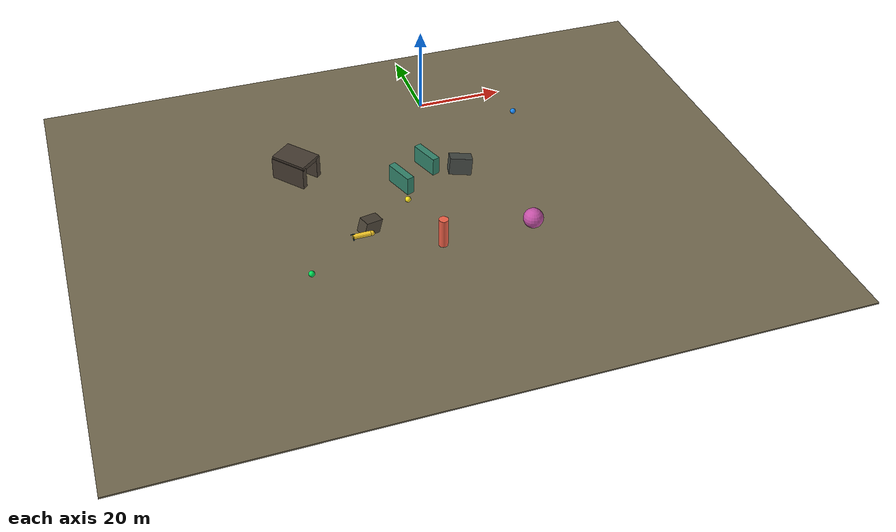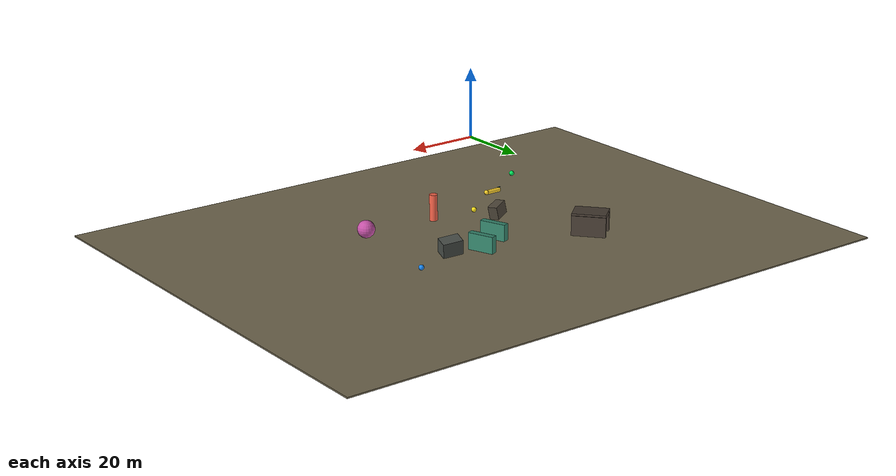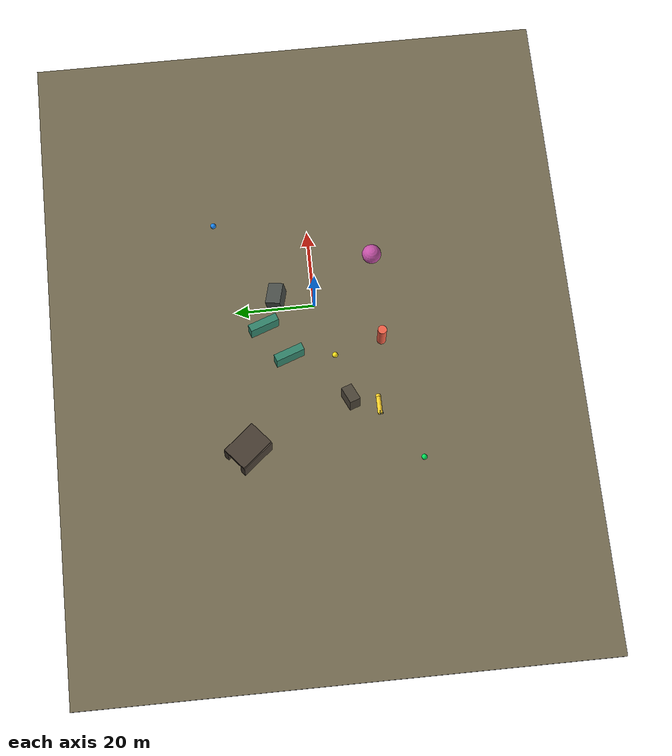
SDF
<?xml version="1.0"?>
<sdf version="1.10">
  <world name="coral_reef_world">
    <plugin filename="gz-sim-physics-system"
            name="gz::sim::systems::Physics"/>
    <plugin filename="gz-sim-user-commands-system"
            name="gz::sim::systems::UserCommands"/>
    <plugin filename="gz-sim-scene-broadcaster-system"
            name="gz::sim::systems::SceneBroadcaster"/>
    <plugin filename="gz-sim-sensors-system"
            name="gz::sim::systems::Sensors">
      <render_engine>ogre2</render_engine>
    </plugin>

    <plugin filename="libuuv_underwater_current_ros_plugin.so"
            name="uuv_simulator_ros::UnderwaterCurrentROSPlugin"/>
    <physics name="default_physics" default="true" type="ode">
      <max_step_size>0.002</max_step_size>
      <real_time_factor>1.0</real_time_factor>
      <real_time_update_rate>500</real_time_update_rate>
    </physics>

    <spherical_coordinates>
      <surface_model>EARTH_WGS84</surface_model>
      <latitude_deg>56.71897669633431</latitude_deg>
      <longitude_deg>3.515625</longitude_deg>
      <elevation>0</elevation>
      <heading_deg>0</heading_deg>
    </spherical_coordinates>

    <scene>
      <ambient>0.04 0.22 0.32 1</ambient>
      <background>0.01 0.05 0.08 1</background>
      <shadows>true</shadows>
      <fog>
        <type>linear</type>
        <color>0.02 0.20 0.28 1</color>
        <start>18</start>
        <end>95</end>
        <density>0.035</density>
      </fog>
    </scene>

    <light name="filtered_surface_light" type="directional">
      <pose>0 0 60 0.4 0.2 0</pose>
      <diffuse>0.35 0.62 0.72 1</diffuse>
      <specular>0.08 0.12 0.14 1</specular>
      <direction>-0.35 0.15 -1</direction>
      <cast_shadows>false</cast_shadows>
    </light>

    <model name="seabed">
      <static>true</static>
      <pose>0 0 -30 0 0 0</pose>
      <link name="seabed_link">
        <collision name="seabed_collision">
          <geometry>
            <box>
              <size>180 140 0.4</size>
            </box>
          </geometry>
        </collision>
        <visual name="seabed_visual">
          <geometry>
            <box>
              <size>180 140 0.4</size>
            </box>
          </geometry>
          <material>
            <ambient>0.34 0.30 0.23 1</ambient>
            <diffuse>0.46 0.42 0.32 1</diffuse>
            <specular>0.02 0.02 0.02 1</specular>
          </material>
        </visual>
      </link>
    </model>

    <model name="navigation_waypoints">
      <static>true</static>
      <pose>0 0 0 0 0 0</pose>
      <link name="waypoints_link">
        <visual name="wp_start">
          <pose>-35 -25 -24 0 0 0</pose>
          <geometry><sphere><radius>0.75</radius></sphere></geometry>
          <material><ambient>0 0.9 0.35 1</ambient><diffuse>0 0.9 0.35 1</diffuse></material>
        </visual>
        <visual name="wp_gap">
          <pose>-5 -5 -24 0 0 0</pose>
          <geometry><sphere><radius>0.75</radius></sphere></geometry>
          <material><ambient>1 0.9 0.1 1</ambient><diffuse>1 0.9 0.1 1</diffuse></material>
        </visual>
        <visual name="wp_goal">
          <pose>35 24 -24 0 0 0</pose>
          <geometry><sphere><radius>0.75</radius></sphere></geometry>
          <material><ambient>0.1 0.55 1 1</ambient><diffuse>0.1 0.55 1 1</diffuse></material>
        </visual>
      </link>
    </model>

    <model name="uuv_simulator_demo_body">
      <pose>-20 -15 -24 0 0 0</pose>
      <link name="base_link">
        <gravity>false</gravity>
        <inertial>
          <mass>120</mass>
          <inertia>
            <ixx>45</ixx>
            <iyy>125</iyy>
            <izz>125</izz>
            <ixy>0</ixy>
            <ixz>0</ixz>
            <iyz>0</iyz>
          </inertia>
        </inertial>
        <collision name="body_collision">
          <pose>0 0 0 0 1.57079632679 0</pose>
          <geometry>
            <cylinder>
              <radius>0.65</radius>
              <length>4.5</length>
            </cylinder>
          </geometry>
        </collision>
        <visual name="body_visual">
          <pose>0 0 0 0 1.57079632679 0</pose>
          <geometry>
            <cylinder>
              <radius>0.65</radius>
              <length>4.5</length>
            </cylinder>
          </geometry>
          <material>
            <ambient>0.95 0.72 0.08 1</ambient>
            <diffuse>1.0 0.82 0.16 1</diffuse>
            <specular>0.2 0.2 0.12 1</specular>
          </material>
        </visual>
        <visual name="nose_visual">
          <pose>2.55 0 0 0 0 0</pose>
          <geometry>
            <sphere>
              <radius>0.68</radius>
            </sphere>
          </geometry>
          <material>
            <ambient>0.95 0.72 0.08 1</ambient>
            <diffuse>1.0 0.82 0.16 1</diffuse>
          </material>
        </visual>
        <visual name="tail_fin_vertical">
          <pose>-2.2 -0.75 0 0 0 0</pose>
          <geometry>
            <box>
              <size>0.2 0.12 1.1</size>
            </box>
          </geometry>
          <material>
            <ambient>0.05 0.18 0.25 1</ambient>
            <diffuse>0.06 0.26 0.36 1</diffuse>
          </material>
        </visual>
        <visual name="tail_fin_horizontal">
          <pose>-2.2 0 0.75 0 0 0</pose>
          <geometry>
            <box>
              <size>1.1 0.12 0.2</size>
            </box>
          </geometry>
          <material>
            <ambient>0.05 0.18 0.25 1</ambient>
            <diffuse>0.06 0.26 0.36 1</diffuse>
          </material>
        </visual>
      </link>
      <plugin filename="gz-sim-velocity-control-system"
              name="gz::sim::systems::VelocityControl">
        <initial_linear>0.35 0 0</initial_linear>
        <initial_angular>0 0 0</initial_angular>
      </plugin>
    </model>

    <model name="reef_rocks_and_corals">
      <static>true</static>
      <pose>0 0 0 0 0 0</pose>
      <link name="reef_link">
        <collision name="rock_1_collision">
          <pose>-16 -8 -27.2 0.1 0.2 0.4</pose>
          <geometry><box><size>5 3 4</size></box></geometry>
        </collision>
        <visual name="rock_1_visual">
          <pose>-16 -8 -27.2 0.1 0.2 0.4</pose>
          <geometry><box><size>5 3 4</size></box></geometry>
          <material><ambient>0.20 0.18 0.16 1</ambient><diffuse>0.30 0.27 0.22 1</diffuse></material>
        </visual>

        <collision name="rock_2_collision">
          <pose>14 9 -27.0 -0.2 0.1 -0.25</pose>
          <geometry><box><size>6 4 4.5</size></box></geometry>
        </collision>
        <visual name="rock_2_visual">
          <pose>14 9 -27.0 -0.2 0.1 -0.25</pose>
          <geometry><box><size>6 4 4.5</size></box></geometry>
          <material><ambient>0.18 0.19 0.18 1</ambient><diffuse>0.28 0.30 0.28 1</diffuse></material>
        </visual>

        <collision name="coral_column_collision">
          <pose>0 -18 -25.8 0 0 0</pose>
          <geometry><cylinder><radius>1.2</radius><length>8</length></cylinder></geometry>
        </collision>
        <visual name="coral_column_visual">
          <pose>0 -18 -25.8 0 0 0</pose>
          <geometry><cylinder><radius>1.2</radius><length>8</length></cylinder></geometry>
          <material><ambient>0.86 0.28 0.20 1</ambient><diffuse>0.95 0.38 0.28 1</diffuse></material>
        </visual>

        <collision name="coral_head_collision">
          <pose>24 -18 -27.4 0 0 0</pose>
          <geometry><sphere><radius>2.6</radius></sphere></geometry>
        </collision>
        <visual name="coral_head_visual">
          <pose>24 -18 -27.4 0 0 0</pose>
          <geometry><sphere><radius>2.6</radius></sphere></geometry>
          <material><ambient>0.58 0.22 0.50 1</ambient><diffuse>0.78 0.32 0.66 1</diffuse></material>
        </visual>

        <collision name="gap_left_collision">
          <pose>-3 7 -26.5 0 0 0.35</pose>
          <geometry><box><size>2 8 5</size></box></geometry>
        </collision>
        <visual name="gap_left_visual">
          <pose>-3 7 -26.5 0 0 0.35</pose>
          <geometry><box><size>2 8 5</size></box></geometry>
          <material><ambient>0.12 0.36 0.30 1</ambient><diffuse>0.20 0.52 0.42 1</diffuse></material>
        </visual>

        <collision name="gap_right_collision">
          <pose>6 13 -26.5 0 0 0.35</pose>
          <geometry><box><size>2 8 5</size></box></geometry>
        </collision>
        <visual name="gap_right_visual">
          <pose>6 13 -26.5 0 0 0.35</pose>
          <geometry><box><size>2 8 5</size></box></geometry>
          <material><ambient>0.12 0.36 0.30 1</ambient><diffuse>0.20 0.52 0.42 1</diffuse></material>
        </visual>
      </link>
    </model>

    <model name="reef_tunnel_marker">
      <static>true</static>
      <pose>-28 20 -26 0 0 0.7</pose>
      <link name="tunnel_link">
        <collision name="left_wall">
          <pose>-3 0 0 0 0 0</pose>
          <geometry><box><size>1.5 10 6</size></box></geometry>
        </collision>
        <collision name="right_wall">
          <pose>3 0 0 0 0 0</pose>
          <geometry><box><size>1.5 10 6</size></box></geometry>
        </collision>
        <collision name="roof">
          <pose>0 0 3 0 0 0</pose>
          <geometry><box><size>7 10 1.2</size></box></geometry>
        </collision>
        <visual name="left_wall_visual">
          <pose>-3 0 0 0 0 0</pose>
          <geometry><box><size>1.5 10 6</size></box></geometry>
          <material><ambient>0.18 0.16 0.13 1</ambient><diffuse>0.28 0.24 0.20 1</diffuse></material>
        </visual>
        <visual name="right_wall_visual">
          <pose>3 0 0 0 0 0</pose>
          <geometry><box><size>1.5 10 6</size></box></geometry>
          <material><ambient>0.18 0.16 0.13 1</ambient><diffuse>0.28 0.24 0.20 1</diffuse></material>
        </visual>
        <visual name="roof_visual">
          <pose>0 0 3 0 0 0</pose>
          <geometry><box><size>7 10 1.2</size></box></geometry>
          <material><ambient>0.18 0.16 0.13 1</ambient><diffuse>0.28 0.24 0.20 1</diffuse></material>
        </visual>
      </link>
    </model>
  </world>
</sdf>
